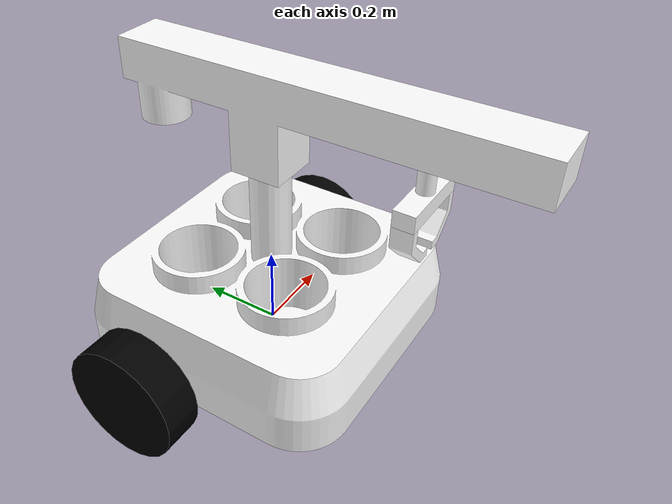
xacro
<?xml version="1.0"?>
<robot xmlns:xacro="http://www.ros.org/wiki/xacro"  name="robot">

    <xacro:include filename="robot_core.xacro" />
    <xacro:include filename="gazebo_control.xacro" />

    <xacro:include filename="arm_tr.xacro" />
    <xacro:include filename="gripper_tr.xacro" />

    <ros2_control name="gripper_robot_gazebo_system" type="system">
        <hardware>
            <plugin>gazebo_ros2_control/GazeboSystem</plugin>
        </hardware>
        <xacro:crane_tr/>
        <xacro:shafty1_tr/>
        <xacro:shafty2_tr/>
        <xacro:shafty3_tr/>
        <xacro:gripper1_tr/>
        <xacro:gripper2_tr/>
    </ros2_control>
    <xacro:robot_controller/>

</robot>

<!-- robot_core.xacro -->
<robot xmlns:xacro="http://www.ros.org/wiki/xacro" >
    <xacro:include filename="inertial_macros.xacro" />

<!--MATERIAL-->

    <material name="white">
        <color rgba="1 1 1 1" />
    </material>

    <material name="black">
        <color rgba="0 0 0 1"/>
    </material>

<!--PLANE-->

    <link name="plane"></link>

<!--BASEFOOTPRINT-->

    <joint name="footprint_joint" type="fixed">
        <parent link="plane"/>
        <child link="footprint"/>
        <origin xyz="0 0 0" rpy="0 0 0"/>
    </joint>

    <link name="footprint">
    </link>

<!--BODY-->

    <joint name="body_joint" type="fixed">
        <parent link="plane"/>
        <child link="body"/>
        <origin xyz="0 0 0"/>
    </joint>

    <link name="body">
        <visual>
            <origin xyz="0 0 0" rpy="0 0 0"/>
            <geometry>
                <mesh filename="file://$(find probobot)/description/body.dae" scale="1 1 1"/>
            </geometry>
            <material name="white"/>
        </visual>
        <collision>
            <origin xyz="0 0 0" rpy="0 0 0"/>
            <geometry>
                <mesh filename="file://$(find probobot)/description/body.dae" scale="1 1 1"/>
            </geometry>
        </collision>
        <xacro:inertial_box mass="50" x="0.7" y="0.7" z="0.2">
            <origin xyz="0 0 0.1" rpy="0 0 0"/>
        </xacro:inertial_box>
    </link>

    <gazebo reference="body">
        <material>Gazebo/White</material>
    </gazebo>

<!--LEFTWHEEl-->

    <joint name="left_wheel_joint" type="continuous">
        <parent link="body"/>
        <child link="left_wheel"/>
        <origin xyz="0.4 0.12 0" rpy="0 -${pi/2} 0"/>
        <axis xyz="0 0 -1"/>
    </joint>

    <link name="left_wheel">
        <visual>
            <geometry>
                <cylinder length="0.1" radius="0.15" />
            </geometry>
            <material name="black"/>
        </visual>
        <collision>
            <geometry>
                <cylinder length="0.1" radius="0.15" />
            </geometry>
        </collision>
        <xacro:inertial_cylinder mass="100" length="0.1" radius="0.15">
            <origin xyz="0 0 0" rpy="0 0 ${pi/2}"/>
        </xacro:inertial_cylinder>
    </link>

    <gazebo reference="left_wheel">
        <material>Gazebo/Black</material>
    </gazebo>

<!--RIGHTWHEEl-->

    <joint name="right_wheel_joint" type="continuous">
        <parent link="body"/>
        <child link="right_wheel"/>
        <origin xyz="-0.4 0.12 0" rpy="0 ${pi/2} 0"/>
        <axis xyz="0 0 1"/>
    </joint>

    <link name="right_wheel">
        <visual>
            <geometry>
                <cylinder length="0.1" radius="0.15" />
            </geometry>
            <material name="black"/>
        </visual>
        <collision>
            <geometry>
                <cylinder length="0.1" radius="0.15" />
            </geometry>
        </collision>
        <xacro:inertial_cylinder mass="100" length="0.1" radius="0.15">
            <origin xyz="0 0 0" rpy="0 0 ${pi/2}"/>
        </xacro:inertial_cylinder>
    </link>

    <gazebo reference="right_wheel">
        <material>Gazebo/Black</material>
    </gazebo>

<!--CASTER-->

    <joint name="caster_joint" type="continuous">
        <parent link="body"/>
        <child link="caster_wheel"/>
        <origin xyz="0 -0.255 0" rpy="0 0 ${pi}"/>
        <axis xyz="0 0 1"/>
    </joint>

    <link name="caster_wheel">
        <visual>
            <geometry>
                <mesh filename="file://$(find probobot)/description/caster.dae" scale="1 1 1"/>
            </geometry>
            <material name="black"/>
        </visual>
        <collision>
            <geometry>
                <cylinder length="0.3" radius="0.075"/>
            </geometry>
        </collision>
        <xacro:inertial_cylinder mass="150" length="0.3" radius="0.075">
            <origin xyz="0 0 0" rpy="0 0 ${pi/2}"/>
        </xacro:inertial_cylinder>
    </link>

    <gazebo reference="caster_wheel">
        <material>Gazebo/White</material>
    </gazebo>

<!--SHAFT-->

    <joint name="shaft_joint" type="fixed">
        <parent link="body"/>
        <child link="shaft"/>
        <origin xyz="0 0 0.3" rpy="0 0 ${pi/2}"/>
        <axis xyz="0 0 1"/>
    </joint>

    <link name="shaft">
        <visual>
            <geometry>
                <cylinder length="0.3" radius="0.05"/>
            </geometry>
            <material name="white"/>
        </visual>
        <collision>
            <geometry>
                <cylinder length="0.3" radius="0.05"/>
            </geometry>
        </collision>
        <xacro:inertial_cylinder mass="1" length="0.3" radius="0.05">
            <origin xyz="0 0 0" rpy="0 0 ${pi/2}"/>
        </xacro:inertial_cylinder>
    </link>

    <gazebo reference="shaft">
        <material>Gazebo/White</material>
    </gazebo>

<!--CRANE-->

    <joint name="crane_joint" type="continuous">
        <parent link="shaft"/>
        <child link="crane"/>
        <origin xyz="0 0 0.15" rpy="0 0 -${pi/2}"/>
        <axis xyz="0 0 1"/>
        <dynamics damping="1" friction="200" />
    </joint>

    <link name="crane">
        <visual>
            <geometry>
                <mesh filename="file://$(find probobot)/description/crane.dae" scale="1 1 1"/>
            </geometry>
            <material name="white"/>
        </visual>
        <collision>
            <geometry>
                <mesh filename="file://$(find probobot)/description/crane.dae" scale="1 1 1"/>
            </geometry>
        </collision>
        <xacro:inertial_box mass="10" x="0" y="0" z="0.15">
            <origin xyz="0 0 0" rpy="0 0 -${pi/2}"/>
        </xacro:inertial_box>
    </link>

    <gazebo reference="crane">
        <material>Gazebo/White</material>
    </gazebo>

<!--SHAFTY1-->

    <joint name="shafty1_joint" type="prismatic">
        <parent link="crane"/>
        <child link="shafty1"/>
        <origin xyz="0 0 0.15" rpy="0 0 -${pi/2}"/>
        <axis xyz="1 0 0"/>
        <limit lower="0.6" upper="0.15" effort="100" velocity="0.5"/>
        <dynamics damping="1" friction="50"/>
    </joint>

    <link name="shafty1">
        <visual>
            <geometry>
                <mesh filename="file://$(find probobot)/description/shafty1.dae" scale="1 1 1"/>
            </geometry>
            <material name="white"/>
        </visual>
        <collision>
            <geometry>
                <mesh filename="file://$(find probobot)/description/shafty1.dae" scale="1 1 1"/>
            </geometry>
        </collision>
        <xacro:inertial_cylinder mass="0.01" length="0.1" radius="0.015">
            <origin xyz="0 0 -0.15" rpy="0 0 -${pi/2}"/>
        </xacro:inertial_cylinder>
    </link>

    <gazebo reference="shafty1">
        <material>Gazebo/White</material>
    </gazebo>

<!--SHAFTY2-->

    <joint name="shafty2_joint" type="prismatic">
        <parent link="shafty1"/>
        <child link="shafty2"/>
        <origin xyz="0 0 0" rpy="0 0 -${pi/2}"/>
        <axis xyz="0 0 -1"/>
        <limit lower="0" upper="0.1" effort="100" velocity="0.5"/>
        <dynamics damping="1" friction="100"/>
    </joint>

    <link name="shafty2">
        <visual>
            <geometry>
                <mesh filename="file://$(find probobot)/description/shafty2.dae" scale="1 1 1"/>
            </geometry>
            <material name="white"/>
        </visual>
        <collision>
            <geometry>
                <mesh filename="file://$(find probobot)/description/shafty2.dae" scale="1 1 1"/>
            </geometry>
        </collision>
        <xacro:inertial_cylinder mass="0.01" length="0.1" radius="0.01">
            <origin xyz="0 0 -0.1" rpy="0 0 -${pi/2}"/>
        </xacro:inertial_cylinder>
    </link>

    <gazebo reference="shafty2">
        <material>Gazebo/Black</material>
    </gazebo>

<!--SHAFTY3-->

    <joint name="shafty3_joint" type="prismatic">
        <parent link="shafty2"/>
        <child link="shafty3"/>
        <origin xyz="0 0 0" rpy="0 0 -${pi/2}"/>
        <axis xyz="0 0 -1"/>
        <limit lower="0" upper="0.1" effort="100" velocity="0.5"/>
        <dynamics damping="1" friction="100"/>
    </joint>

    <link name="shafty3">
        <visual>
            <geometry>
                <mesh filename="file://$(find probobot)/description/shafty3.dae" scale="1 1 1"/>
            </geometry>
            <material name="white"/>
        </visual>
        <collision>
            <geometry>
                <mesh filename="file://$(find probobot)/description/shafty3.dae" scale="1 1 1"/>
            </geometry>
        </collision>
        <xacro:inertial_cylinder mass="0.01" length="0.1" radius="0.005">
            <origin xyz="0 0 0" rpy="0 0 -${pi/2}"/>
        </xacro:inertial_cylinder>
    </link>

    <gazebo reference="shafty3">
        <material>Gazebo/White</material>
    </gazebo>

<!--GAN-->

    <joint name="gan_joint" type="fixed">
        <parent link="shafty3"/>
        <child link="gan"/>
        <origin xyz="0 0 -0.1" rpy="0 0 0"/>
    </joint>

    <link name="gan">
        <visual>
            <geometry>
                <box size="0.05 0.19 0.04"/>
            </geometry>
            <material name="white"/>
        </visual>
        <collision>
            <geometry>
                <box size="0.05 0.19 0.04"/>
            </geometry>
        </collision>
        <xacro:inertial_box mass="0.01" x="0.025" y="0.095" z="0.02">
            <origin xyz="0 0 0" rpy="${pi/2} 0 0"/>
        </xacro:inertial_box>
    </link>

    <gazebo reference="gan">
        <material>Gazebo/White</material>
    </gazebo>

<!--GRIP-->

    <joint name="grip_joint" type="revolute">
        <parent link="gan"/>
        <child link="grip"/>
        <origin xyz="0 -0.085 -0.02" rpy="0 0 0"/>
        <limit lower="-${pi/2}" upper="${pi/18}" effort="10" velocity="10"/>
        <dynamics damping="1" friction="10"/>
    </joint>

    <link name="grip">
        <visual>
            <geometry>
                <mesh filename="file://$(find probobot)/description/grip.dae" scale="1 1 1"/>
            </geometry>
            <material name="white"/>
        </visual>
        <collision>
            <geometry>
                <mesh filename="file://$(find probobot)/description/grip.dae" scale="1 1 1"/>
            </geometry>
        </collision>
        <xacro:inertial_box mass="0.01" x="0.05" y="0.083" z="0.103">
            <origin xyz="0 0.085 -0.02" rpy="0 0 0"/>
        </xacro:inertial_box>
    </link>

    <gazebo reference="grip">
        <material>Gazebo/Black</material>
    </gazebo>

<!--GRIP-MIMIC-->

    <joint name="grip_joint_mimic" type="revolute">
        <parent link="gan"/>
        <child link="grip_mimic"/>
        <origin xyz="0 0.085 -0.02" rpy="0 0 ${pi}"/>
        <limit lower="-${pi/2}" upper="${pi/18}" effort="10" velocity="10"/>
        <dynamics damping="1" friction="10"/>
    </joint>

    <link name="grip_mimic">
        <visual>
            <geometry>
                <mesh filename="file://$(find probobot)/description/grip.dae" scale="1 1 1"/>
            </geometry>
            <material name="white"/>
        </visual>
        <collision>
            <geometry>
                <mesh filename="file://$(find probobot)/description/grip.dae" scale="1 1 1"/>
            </geometry>
        </collision>
        <xacro:inertial_box mass="0.01" x="0.05" y="0.083" z="0.103">
            <origin xyz="0 -0.085 -0.02" rpy="0 0 0"/>
        </xacro:inertial_box>
    </link>

    <gazebo reference="grip_mimic">
        <material>Gazebo/White</material>
    </gazebo>

</robot>
